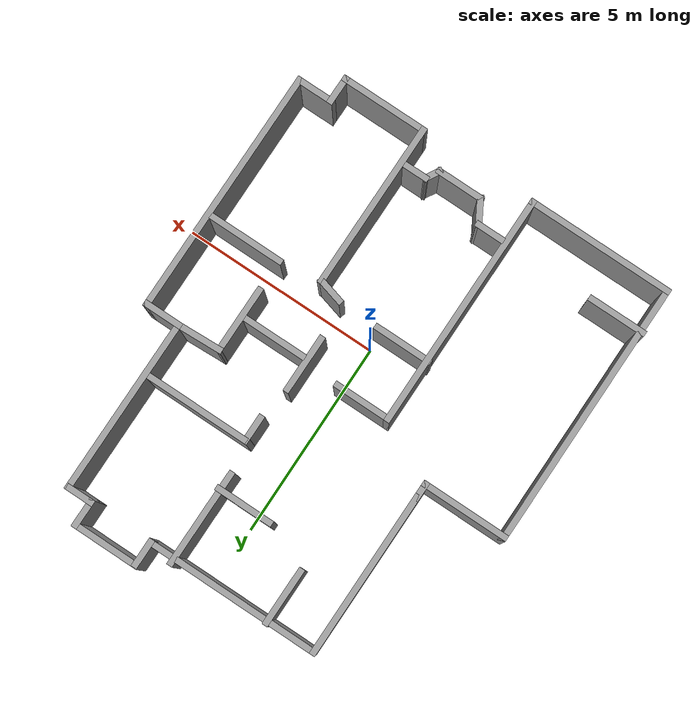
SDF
<?xml version='1.0'?>
<sdf version='1.6'>
  <model name='map_37'>
    <pose frame=''>-0.174646 1.22 0 0 -0 0</pose>
    <link name='Wall_0'>
      <collision name='Wall_0_Collision'>
        <geometry>
          <box>
            <size>3.75 0.15 2.5</size>
          </box>
        </geometry>
        <pose frame=''>0 0 1.25 0 -0 0</pose>
      </collision>
      <visual name='Wall_0_Visual'>
        <pose frame=''>0 0 1.25 0 -0 0</pose>
        <geometry>
          <box>
            <size>3.75 0.15 2.5</size>
          </box>
        </geometry>
        <material>
          <script>
            <uri>file://media/materials/scripts/gazebo.material</uri>
            <name>Gazebo/Grey</name>
          </script>
          <ambient>1 1 1 1</ambient>
        </material>
        <meta>
          <layer>0</layer>
        </meta>
      </visual>
      <pose frame=''>-2.92556 -5.825 0 0 -0 3.14159</pose>
    </link>
    <link name='Wall_1'>
      <collision name='Wall_1_Collision'>
        <geometry>
          <box>
            <size>6.75 0.15 2.5</size>
          </box>
        </geometry>
        <pose frame=''>0 0 1.25 0 -0 0</pose>
      </collision>
      <visual name='Wall_1_Visual'>
        <pose frame=''>0 0 1.25 0 -0 0</pose>
        <geometry>
          <box>
            <size>6.75 0.15 2.5</size>
          </box>
        </geometry>
        <material>
          <script>
            <uri>file://media/materials/scripts/gazebo.material</uri>
            <name>Gazebo/Grey</name>
          </script>
          <ambient>1 1 1 1</ambient>
        </material>
        <meta>
          <layer>0</layer>
        </meta>
      </visual>
      <pose frame=''>-4.72556 -2.525 0 0 -0 1.5708</pose>
    </link>
    <link name='Wall_10'>
      <collision name='Wall_10_Collision'>
        <geometry>
          <box>
            <size>1.75 0.15 2.5</size>
          </box>
        </geometry>
        <pose frame=''>0 0 1.25 0 -0 0</pose>
      </collision>
      <visual name='Wall_10_Visual'>
        <pose frame=''>0 0 1.25 0 -0 0</pose>
        <geometry>
          <box>
            <size>1.75 0.15 2.5</size>
          </box>
        </geometry>
        <material>
          <script>
            <uri>file://media/materials/scripts/gazebo.material</uri>
            <name>Gazebo/Grey</name>
          </script>
          <ambient>1 1 1 1</ambient>
        </material>
        <meta>
          <layer>0</layer>
        </meta>
      </visual>
      <pose frame=''>2.52444 5.825 0 0 -0 0</pose>
    </link>
    <link name='Wall_11'>
      <collision name='Wall_11_Collision'>
        <geometry>
          <box>
            <size>0.75 0.15 2.5</size>
          </box>
        </geometry>
        <pose frame=''>0 0 1.25 0 -0 0</pose>
      </collision>
      <visual name='Wall_11_Visual'>
        <pose frame=''>0 0 1.25 0 -0 0</pose>
        <geometry>
          <box>
            <size>0.75 0.15 2.5</size>
          </box>
        </geometry>
        <material>
          <script>
            <uri>file://media/materials/scripts/gazebo.material</uri>
            <name>Gazebo/Grey</name>
          </script>
          <ambient>1 1 1 1</ambient>
        </material>
        <meta>
          <layer>0</layer>
        </meta>
      </visual>
      <pose frame=''>3.32444 5.525 0 0 -0 -1.5708</pose>
    </link>
    <link name='Wall_12'>
      <collision name='Wall_12_Collision'>
        <geometry>
          <box>
            <size>0.75 0.15 2.5</size>
          </box>
        </geometry>
        <pose frame=''>0 0 1.25 0 -0 0</pose>
      </collision>
      <visual name='Wall_12_Visual'>
        <pose frame=''>0 0 1.25 0 -0 0</pose>
        <geometry>
          <box>
            <size>0.75 0.15 2.5</size>
          </box>
        </geometry>
        <material>
          <script>
            <uri>file://media/materials/scripts/gazebo.material</uri>
            <name>Gazebo/Grey</name>
          </script>
          <ambient>1 1 1 1</ambient>
        </material>
        <meta>
          <layer>0</layer>
        </meta>
      </visual>
      <pose frame=''>3.62444 5.225 0 0 -0 0</pose>
    </link>
    <link name='Wall_13'>
      <collision name='Wall_13_Collision'>
        <geometry>
          <box>
            <size>4.5 0.15 2.5</size>
          </box>
        </geometry>
        <pose frame=''>0 0 1.25 0 -0 0</pose>
      </collision>
      <visual name='Wall_13_Visual'>
        <pose frame=''>0 0 1.25 0 -0 0</pose>
        <geometry>
          <box>
            <size>4.5 0.15 2.5</size>
          </box>
        </geometry>
        <material>
          <script>
            <uri>file://media/materials/scripts/gazebo.material</uri>
            <name>Gazebo/Grey</name>
          </script>
          <ambient>1 1 1 1</ambient>
        </material>
        <meta>
          <layer>0</layer>
        </meta>
      </visual>
      <pose frame=''>3.92444 3.05 0 0 -0 -1.5708</pose>
    </link>
    <link name='Wall_14'>
      <collision name='Wall_14_Collision'>
        <geometry>
          <box>
            <size>1 0.15 2.5</size>
          </box>
        </geometry>
        <pose frame=''>0 0 1.25 0 -0 0</pose>
      </collision>
      <visual name='Wall_14_Visual'>
        <pose frame=''>0 0 1.25 0 -0 0</pose>
        <geometry>
          <box>
            <size>1 0.15 2.5</size>
          </box>
        </geometry>
        <material>
          <script>
            <uri>file://media/materials/scripts/gazebo.material</uri>
            <name>Gazebo/Grey</name>
          </script>
          <ambient>1 1 1 1</ambient>
        </material>
        <meta>
          <layer>0</layer>
        </meta>
      </visual>
      <pose frame=''>4.34944 0.875 0 0 -0 0</pose>
    </link>
    <link name='Wall_15'>
      <collision name='Wall_15_Collision'>
        <geometry>
          <box>
            <size>6.25 0.15 2.5</size>
          </box>
        </geometry>
        <pose frame=''>0 0 1.25 0 -0 0</pose>
      </collision>
      <visual name='Wall_15_Visual'>
        <pose frame=''>0 0 1.25 0 -0 0</pose>
        <geometry>
          <box>
            <size>6.25 0.15 2.5</size>
          </box>
        </geometry>
        <material>
          <script>
            <uri>file://media/materials/scripts/gazebo.material</uri>
            <name>Gazebo/Grey</name>
          </script>
          <ambient>1 1 1 1</ambient>
        </material>
        <meta>
          <layer>0</layer>
        </meta>
      </visual>
      <pose frame=''>4.77444 -2.175 0 0 -0 -1.5708</pose>
    </link>
    <link name='Wall_16'>
      <collision name='Wall_16_Collision'>
        <geometry>
          <box>
            <size>1 0.15 2.5</size>
          </box>
        </geometry>
        <pose frame=''>0 0 1.25 0 -0 0</pose>
      </collision>
      <visual name='Wall_16_Visual'>
        <pose frame=''>0 0 1.25 0 -0 0</pose>
        <geometry>
          <box>
            <size>1 0.15 2.5</size>
          </box>
        </geometry>
        <material>
          <script>
            <uri>file://media/materials/scripts/gazebo.material</uri>
            <name>Gazebo/Grey</name>
          </script>
          <ambient>1 1 1 1</ambient>
        </material>
        <meta>
          <layer>0</layer>
        </meta>
      </visual>
      <pose frame=''>4.34944 -5.225 0 0 -0 3.14159</pose>
    </link>
    <link name='Wall_17'>
      <collision name='Wall_17_Collision'>
        <geometry>
          <box>
            <size>0.75 0.15 2.5</size>
          </box>
        </geometry>
        <pose frame=''>0 0 1.25 0 -0 0</pose>
      </collision>
      <visual name='Wall_17_Visual'>
        <pose frame=''>0 0 1.25 0 -0 0</pose>
        <geometry>
          <box>
            <size>0.75 0.15 2.5</size>
          </box>
        </geometry>
        <material>
          <script>
            <uri>file://media/materials/scripts/gazebo.material</uri>
            <name>Gazebo/Grey</name>
          </script>
          <ambient>1 1 1 1</ambient>
        </material>
        <meta>
          <layer>0</layer>
        </meta>
      </visual>
      <pose frame=''>3.92444 -5.525 0 0 -0 -1.5708</pose>
    </link>
    <link name='Wall_18'>
      <collision name='Wall_18_Collision'>
        <geometry>
          <box>
            <size>2.25 0.15 2.5</size>
          </box>
        </geometry>
        <pose frame=''>0 0 1.25 0 -0 0</pose>
      </collision>
      <visual name='Wall_18_Visual'>
        <pose frame=''>0 0 1.25 0 -0 0</pose>
        <geometry>
          <box>
            <size>2.25 0.15 2.5</size>
          </box>
        </geometry>
        <material>
          <script>
            <uri>file://media/materials/scripts/gazebo.material</uri>
            <name>Gazebo/Grey</name>
          </script>
          <ambient>1 1 1 1</ambient>
        </material>
        <meta>
          <layer>0</layer>
        </meta>
      </visual>
      <pose frame=''>2.87444 -5.825 0 0 -0 3.14159</pose>
    </link>
    <link name='Wall_19'>
      <collision name='Wall_19_Collision'>
        <geometry>
          <box>
            <size>4.25 0.15 2.5</size>
          </box>
        </geometry>
        <pose frame=''>0 0 1.25 0 -0 0</pose>
      </collision>
      <visual name='Wall_19_Visual'>
        <pose frame=''>0 0 1.25 0 -0 0</pose>
        <geometry>
          <box>
            <size>4.25 0.15 2.5</size>
          </box>
        </geometry>
        <material>
          <script>
            <uri>file://media/materials/scripts/gazebo.material</uri>
            <name>Gazebo/Grey</name>
          </script>
          <ambient>1 1 1 1</ambient>
        </material>
        <meta>
          <layer>0</layer>
        </meta>
      </visual>
      <pose frame=''>1.82444 -3.775 0 0 -0 1.5708</pose>
    </link>
    <link name='Wall_2'>
      <collision name='Wall_2_Collision'>
        <geometry>
          <box>
            <size>2.25 0.15 2.5</size>
          </box>
        </geometry>
        <pose frame=''>0 0 1.25 0 -0 0</pose>
      </collision>
      <visual name='Wall_2_Visual'>
        <pose frame=''>0 0 1.25 0 -0 0</pose>
        <geometry>
          <box>
            <size>2.25 0.15 2.5</size>
          </box>
        </geometry>
        <material>
          <script>
            <uri>file://media/materials/scripts/gazebo.material</uri>
            <name>Gazebo/Grey</name>
          </script>
          <ambient>1 1 1 1</ambient>
        </material>
        <meta>
          <layer>0</layer>
        </meta>
      </visual>
      <pose frame=''>-3.67556 0.775 0 0 -0 0</pose>
    </link>
    <link name='Wall_20'>
      <collision name='Wall_20_Collision'>
        <geometry>
          <box>
            <size>0.75 0.15 2.5</size>
          </box>
        </geometry>
        <pose frame=''>0 0 1.25 0 -0 0</pose>
      </collision>
      <visual name='Wall_20_Visual'>
        <pose frame=''>0 0 1.25 0 -0 0</pose>
        <geometry>
          <box>
            <size>0.75 0.15 2.5</size>
          </box>
        </geometry>
        <material>
          <script>
            <uri>file://media/materials/scripts/gazebo.material</uri>
            <name>Gazebo/Grey</name>
          </script>
          <ambient>1 1 1 1</ambient>
        </material>
        <meta>
          <layer>0</layer>
        </meta>
      </visual>
      <pose frame=''>1.53466 -1.64735 0 0 -0 2.87979</pose>
    </link>
    <link name='Wall_22'>
      <collision name='Wall_22_Collision'>
        <geometry>
          <box>
            <size>6 0.15 2.5</size>
          </box>
        </geometry>
        <pose frame=''>0 0 1.25 0 -0 0</pose>
      </collision>
      <visual name='Wall_22_Visual'>
        <pose frame=''>0 0 1.25 0 -0 0</pose>
        <geometry>
          <box>
            <size>6 0.15 2.5</size>
          </box>
        </geometry>
        <material>
          <script>
            <uri>file://media/materials/scripts/gazebo.material</uri>
            <name>Gazebo/Grey</name>
          </script>
          <ambient>1 1 1 1</ambient>
        </material>
        <meta>
          <layer>0</layer>
        </meta>
      </visual>
      <pose frame=''>-1.12556 -2.9 0 0 -0 1.5708</pose>
    </link>
    <link name='Wall_23'>
      <collision name='Wall_23_Collision'>
        <geometry>
          <box>
            <size>1.5 0.15 2.5</size>
          </box>
        </geometry>
        <pose frame=''>0 0 1.25 0 -0 0</pose>
      </collision>
      <visual name='Wall_23_Visual'>
        <pose frame=''>0 0 1.25 0 -0 0</pose>
        <geometry>
          <box>
            <size>1.5 0.15 2.5</size>
          </box>
        </geometry>
        <material>
          <script>
            <uri>file://media/materials/scripts/gazebo.material</uri>
            <name>Gazebo/Grey</name>
          </script>
          <ambient>1 1 1 1</ambient>
        </material>
        <meta>
          <layer>0</layer>
        </meta>
      </visual>
      <pose frame=''>-0.450563 0.025 0 0 -0 0</pose>
    </link>
    <link name='Wall_25'>
      <collision name='Wall_25_Collision'>
        <geometry>
          <box>
            <size>1.5 0.15 2.5</size>
          </box>
        </geometry>
        <pose frame=''>0 0 1.25 0 -0 0</pose>
      </collision>
      <visual name='Wall_25_Visual'>
        <pose frame=''>0 0 1.25 0 -0 0</pose>
        <geometry>
          <box>
            <size>1.5 0.15 2.5</size>
          </box>
        </geometry>
        <material>
          <script>
            <uri>file://media/materials/scripts/gazebo.material</uri>
            <name>Gazebo/Grey</name>
          </script>
          <ambient>1 1 1 1</ambient>
        </material>
        <meta>
          <layer>0</layer>
        </meta>
      </visual>
      <pose frame=''>-0.474843 -1.54705 0 0 -0 0</pose>
    </link>
    <link name='Wall_27'>
      <collision name='Wall_27_Collision'>
        <geometry>
          <box>
            <size>0.75 0.15 2.5</size>
          </box>
        </geometry>
        <pose frame=''>0 0 1.25 0 -0 0</pose>
      </collision>
      <visual name='Wall_27_Visual'>
        <pose frame=''>0 0 1.25 0 -0 0</pose>
        <geometry>
          <box>
            <size>0.75 0.15 2.5</size>
          </box>
        </geometry>
        <material>
          <script>
            <uri>file://media/materials/scripts/gazebo.material</uri>
            <name>Gazebo/Grey</name>
          </script>
          <ambient>1 1 1 1</ambient>
        </material>
        <meta>
          <layer>0</layer>
        </meta>
      </visual>
      <pose frame=''>-0.696892 -4.72843 0 0 -0 0</pose>
    </link>
    <link name='Wall_28'>
      <collision name='Wall_28_Collision'>
        <geometry>
          <box>
            <size>0.75 0.15 2.5</size>
          </box>
        </geometry>
        <pose frame=''>0 0 1.25 0 -0 0</pose>
      </collision>
      <visual name='Wall_28_Visual'>
        <pose frame=''>0 0 1.25 0 -0 0</pose>
        <geometry>
          <box>
            <size>0.75 0.15 2.5</size>
          </box>
        </geometry>
        <material>
          <script>
            <uri>file://media/materials/scripts/gazebo.material</uri>
            <name>Gazebo/Grey</name>
          </script>
          <ambient>1 1 1 1</ambient>
        </material>
        <meta>
          <layer>0</layer>
        </meta>
      </visual>
      <pose frame=''>-0.246892 -4.98824 0 0 -0 -1.0472</pose>
    </link>
    <link name='Wall_29'>
      <collision name='Wall_29_Collision'>
        <geometry>
          <box>
            <size>1.25 0.15 2.5</size>
          </box>
        </geometry>
        <pose frame=''>0 0 1.25 0 -0 0</pose>
      </collision>
      <visual name='Wall_29_Visual'>
        <pose frame=''>0 0 1.25 0 -0 0</pose>
        <geometry>
          <box>
            <size>1.25 0.15 2.5</size>
          </box>
        </geometry>
        <material>
          <script>
            <uri>file://media/materials/scripts/gazebo.material</uri>
            <name>Gazebo/Grey</name>
          </script>
          <ambient>1 1 1 1</ambient>
        </material>
        <meta>
          <layer>0</layer>
        </meta>
      </visual>
      <pose frame=''>0.453108 -5.24805 0 0 -0 0</pose>
    </link>
    <link name='Wall_3'>
      <collision name='Wall_3_Collision'>
        <geometry>
          <box>
            <size>0.5 0.15 2.5</size>
          </box>
        </geometry>
        <pose frame=''>0 0 1.25 0 -0 0</pose>
      </collision>
      <visual name='Wall_3_Visual'>
        <pose frame=''>0 0 1.25 0 -0 0</pose>
        <geometry>
          <box>
            <size>0.5 0.15 2.5</size>
          </box>
        </geometry>
        <material>
          <script>
            <uri>file://media/materials/scripts/gazebo.material</uri>
            <name>Gazebo/Grey</name>
          </script>
          <ambient>1 1 1 1</ambient>
        </material>
        <meta>
          <layer>0</layer>
        </meta>
      </visual>
      <pose frame=''>-2.62556 0.95 0 0 -0 1.5708</pose>
    </link>
    <link name='Wall_30'>
      <collision name='Wall_30_Collision'>
        <geometry>
          <box>
            <size>0.5 0.15 2.5</size>
          </box>
        </geometry>
        <pose frame=''>0 0 1.25 0 -0 0</pose>
      </collision>
      <visual name='Wall_30_Visual'>
        <pose frame=''>0 0 1.25 0 -0 0</pose>
        <geometry>
          <box>
            <size>0.5 0.15 2.5</size>
          </box>
        </geometry>
        <material>
          <script>
            <uri>file://media/materials/scripts/gazebo.material</uri>
            <name>Gazebo/Grey</name>
          </script>
          <ambient>1 1 1 1</ambient>
        </material>
        <meta>
          <layer>0</layer>
        </meta>
      </visual>
      <pose frame=''>1.09061 -5.09649 0 0 -0 1.0472</pose>
    </link>
    <link name='Wall_31'>
      <collision name='Wall_31_Collision'>
        <geometry>
          <box>
            <size>0.75 0.15 2.5</size>
          </box>
        </geometry>
        <pose frame=''>0 0 1.25 0 -0 0</pose>
      </collision>
      <visual name='Wall_31_Visual'>
        <pose frame=''>0 0 1.25 0 -0 0</pose>
        <geometry>
          <box>
            <size>0.75 0.15 2.5</size>
          </box>
        </geometry>
        <material>
          <script>
            <uri>file://media/materials/scripts/gazebo.material</uri>
            <name>Gazebo/Grey</name>
          </script>
          <ambient>1 1 1 1</ambient>
        </material>
        <meta>
          <layer>0</layer>
        </meta>
      </visual>
      <pose frame=''>1.47811 -4.94494 0 0 -0 0</pose>
    </link>
    <link name='Wall_33'>
      <collision name='Wall_33_Collision'>
        <geometry>
          <box>
            <size>1.5 0.15 2.5</size>
          </box>
        </geometry>
        <pose frame=''>0 0 1.25 0 -0 0</pose>
      </collision>
      <visual name='Wall_33_Visual'>
        <pose frame=''>0 0 1.25 0 -0 0</pose>
        <geometry>
          <box>
            <size>1.5 0.15 2.5</size>
          </box>
        </geometry>
        <material>
          <script>
            <uri>file://media/materials/scripts/gazebo.material</uri>
            <name>Gazebo/Grey</name>
          </script>
          <ambient>1 1 1 1</ambient>
        </material>
        <meta>
          <layer>0</layer>
        </meta>
      </visual>
      <pose frame=''>-4.09944 -4.73442 0 0 -0 0</pose>
    </link>
    <link name='Wall_35'>
      <collision name='Wall_35_Collision'>
        <geometry>
          <box>
            <size>1.5 0.15 2.5</size>
          </box>
        </geometry>
        <pose frame=''>0 0 1.25 0 -0 0</pose>
      </collision>
      <visual name='Wall_35_Visual'>
        <pose frame=''>0 0 1.25 0 -0 0</pose>
        <geometry>
          <box>
            <size>1.5 0.15 2.5</size>
          </box>
        </geometry>
        <material>
          <script>
            <uri>file://media/materials/scripts/gazebo.material</uri>
            <name>Gazebo/Grey</name>
          </script>
          <ambient>1 1 1 1</ambient>
        </material>
        <meta>
          <layer>0</layer>
        </meta>
      </visual>
      <pose frame=''>1.10421 0.043622 0 0 -0 -1.5708</pose>
    </link>
    <link name='Wall_37'>
      <collision name='Wall_37_Collision'>
        <geometry>
          <box>
            <size>1.75 0.15 2.5</size>
          </box>
        </geometry>
        <pose frame=''>0 0 1.25 0 -0 0</pose>
      </collision>
      <visual name='Wall_37_Visual'>
        <pose frame=''>0 0 1.25 0 -0 0</pose>
        <geometry>
          <box>
            <size>1.75 0.15 2.5</size>
          </box>
        </geometry>
        <material>
          <script>
            <uri>file://media/materials/scripts/gazebo.material</uri>
            <name>Gazebo/Grey</name>
          </script>
          <ambient>1 1 1 1</ambient>
        </material>
        <meta>
          <layer>0</layer>
        </meta>
      </visual>
      <pose frame=''>1.95741 -0.079384 0 0 -0 0</pose>
    </link>
    <link name='Wall_39'>
      <collision name='Wall_39_Collision'>
        <geometry>
          <box>
            <size>1.75 0.15 2.5</size>
          </box>
        </geometry>
        <pose frame=''>0 0 1.25 0 -0 0</pose>
      </collision>
      <visual name='Wall_39_Visual'>
        <pose frame=''>0 0 1.25 0 -0 0</pose>
        <geometry>
          <box>
            <size>1.75 0.15 2.5</size>
          </box>
        </geometry>
        <material>
          <script>
            <uri>file://media/materials/scripts/gazebo.material</uri>
            <name>Gazebo/Grey</name>
          </script>
          <ambient>1 1 1 1</ambient>
        </material>
        <meta>
          <layer>0</layer>
        </meta>
      </visual>
      <pose frame=''>2.85982 0.029011 0 0 -0 1.5708</pose>
    </link>
    <link name='Wall_40'>
      <collision name='Wall_40_Collision'>
        <geometry>
          <box>
            <size>1.21561 0.15 2.5</size>
          </box>
        </geometry>
        <pose frame=''>0 0 1.25 0 -0 0</pose>
      </collision>
      <visual name='Wall_40_Visual'>
        <pose frame=''>0 0 1.25 0 -0 0</pose>
        <geometry>
          <box>
            <size>1.21561 0.15 2.5</size>
          </box>
        </geometry>
        <material>
          <script>
            <uri>file://media/materials/scripts/gazebo.material</uri>
            <name>Gazebo/Grey</name>
          </script>
          <ambient>1 1 1 1</ambient>
        </material>
        <meta>
          <layer>0</layer>
        </meta>
      </visual>
      <pose frame=''>3.39213 0.852005 0 0 -0 0.043171</pose>
    </link>
    <link name='Wall_42'>
      <collision name='Wall_42_Collision'>
        <geometry>
          <box>
            <size>2 0.15 2.5</size>
          </box>
        </geometry>
        <pose frame=''>0 0 1.25 0 -0 0</pose>
      </collision>
      <visual name='Wall_42_Visual'>
        <pose frame=''>0 0 1.25 0 -0 0</pose>
        <geometry>
          <box>
            <size>2 0.15 2.5</size>
          </box>
        </geometry>
        <material>
          <script>
            <uri>file://media/materials/scripts/gazebo.material</uri>
            <name>Gazebo/Grey</name>
          </script>
          <ambient>1 1 1 1</ambient>
        </material>
        <meta>
          <layer>0</layer>
        </meta>
      </visual>
      <pose frame=''>3.78482 -1.56899 0 0 -0 0</pose>
    </link>
    <link name='Wall_45'>
      <collision name='Wall_45_Collision'>
        <geometry>
          <box>
            <size>2.5 0.15 2.5</size>
          </box>
        </geometry>
        <pose frame=''>0 0 1.25 0 -0 0</pose>
      </collision>
      <visual name='Wall_45_Visual'>
        <pose frame=''>0 0 1.25 0 -0 0</pose>
        <geometry>
          <box>
            <size>2.5 0.15 2.5</size>
          </box>
        </geometry>
        <material>
          <script>
            <uri>file://media/materials/scripts/gazebo.material</uri>
            <name>Gazebo/Grey</name>
          </script>
          <ambient>1 1 1 1</ambient>
        </material>
        <meta>
          <layer>0</layer>
        </meta>
      </visual>
      <pose frame=''>1.08982 4.16722 0 0 -0 -1.5708</pose>
    </link>
    <link name='Wall_47'>
      <collision name='Wall_47_Collision'>
        <geometry>
          <box>
            <size>1.5 0.15 2.5</size>
          </box>
        </geometry>
        <pose frame=''>0 0 1.25 0 -0 0</pose>
      </collision>
      <visual name='Wall_47_Visual'>
        <pose frame=''>0 0 1.25 0 -0 0</pose>
        <geometry>
          <box>
            <size>1.5 0.15 2.5</size>
          </box>
        </geometry>
        <material>
          <script>
            <uri>file://media/materials/scripts/gazebo.material</uri>
            <name>Gazebo/Grey</name>
          </script>
          <ambient>1 1 1 1</ambient>
        </material>
        <meta>
          <layer>0</layer>
        </meta>
      </visual>
      <pose frame=''>0.455275 3.40035 0 0 -0 3.14159</pose>
    </link>
    <link name='Wall_49'>
      <collision name='Wall_49_Collision'>
        <geometry>
          <box>
            <size>2.75 0.15 2.5</size>
          </box>
        </geometry>
        <pose frame=''>0 0 1.25 0 -0 0</pose>
      </collision>
      <visual name='Wall_49_Visual'>
        <pose frame=''>0 0 1.25 0 -0 0</pose>
        <geometry>
          <box>
            <size>2.75 0.15 2.5</size>
          </box>
        </geometry>
        <material>
          <script>
            <uri>file://media/materials/scripts/gazebo.material</uri>
            <name>Gazebo/Grey</name>
          </script>
          <ambient>1 1 1 1</ambient>
        </material>
        <meta>
          <layer>0</layer>
        </meta>
      </visual>
      <pose frame=''>2.5408 2.18668 0 0 -0 3.14159</pose>
    </link>
    <link name='Wall_52'>
      <collision name='Wall_52_Collision'>
        <geometry>
          <box>
            <size>0.75 0.15 2.5</size>
          </box>
        </geometry>
        <pose frame=''>0 0 1.25 0 -0 0</pose>
      </collision>
      <visual name='Wall_52_Visual'>
        <pose frame=''>0 0 1.25 0 -0 0</pose>
        <geometry>
          <box>
            <size>0.75 0.15 2.5</size>
          </box>
        </geometry>
        <material>
          <script>
            <uri>file://media/materials/scripts/gazebo.material</uri>
            <name>Gazebo/Grey</name>
          </script>
          <ambient>1 1 1 1</ambient>
        </material>
        <meta>
          <layer>0</layer>
        </meta>
      </visual>
      <pose frame=''>1.2408 1.88668 0 0 -0 -1.5708</pose>
    </link>
    <link name='Wall_54'>
      <collision name='Wall_54_Collision'>
        <geometry>
          <box>
            <size>1.5 0.15 2.5</size>
          </box>
        </geometry>
        <pose frame=''>0 0 1.25 0 -0 0</pose>
      </collision>
      <visual name='Wall_54_Visual'>
        <pose frame=''>0 0 1.25 0 -0 0</pose>
        <geometry>
          <box>
            <size>1.5 0.15 2.5</size>
          </box>
        </geometry>
        <material>
          <script>
            <uri>file://media/materials/scripts/gazebo.material</uri>
            <name>Gazebo/Grey</name>
          </script>
          <ambient>1 1 1 1</ambient>
        </material>
        <meta>
          <layer>0</layer>
        </meta>
      </visual>
      <pose frame=''>-1.39478 4.58887 0 0 -0 -1.5708</pose>
    </link>
    <link name='Wall_6'>
      <collision name='Wall_6_Collision'>
        <geometry>
          <box>
            <size>4.25 0.15 2.5</size>
          </box>
        </geometry>
        <pose frame=''>0 0 1.25 0 -0 0</pose>
      </collision>
      <visual name='Wall_6_Visual'>
        <pose frame=''>0 0 1.25 0 -0 0</pose>
        <geometry>
          <box>
            <size>4.25 0.15 2.5</size>
          </box>
        </geometry>
        <material>
          <script>
            <uri>file://media/materials/scripts/gazebo.material</uri>
            <name>Gazebo/Grey</name>
          </script>
          <ambient>1 1 1 1</ambient>
        </material>
        <meta>
          <layer>0</layer>
        </meta>
      </visual>
      <pose frame=''>-2.62556 3.175 0 0 -0 1.5708</pose>
    </link>
    <link name='Wall_7'>
      <collision name='Wall_7_Collision'>
        <geometry>
          <box>
            <size>4.5 0.15 2.5</size>
          </box>
        </geometry>
        <pose frame=''>0 0 1.25 0 -0 0</pose>
      </collision>
      <visual name='Wall_7_Visual'>
        <pose frame=''>0 0 1.25 0 -0 0</pose>
        <geometry>
          <box>
            <size>4.5 0.15 2.5</size>
          </box>
        </geometry>
        <material>
          <script>
            <uri>file://media/materials/scripts/gazebo.material</uri>
            <name>Gazebo/Grey</name>
          </script>
          <ambient>1 1 1 1</ambient>
        </material>
        <meta>
          <layer>0</layer>
        </meta>
      </visual>
      <pose frame=''>-0.450563 5.225 0 0 -0 0</pose>
    </link>
    <link name='Wall_9'>
      <collision name='Wall_9_Collision'>
        <geometry>
          <box>
            <size>0.75 0.15 2.5</size>
          </box>
        </geometry>
        <pose frame=''>0 0 1.25 0 -0 0</pose>
      </collision>
      <visual name='Wall_9_Visual'>
        <pose frame=''>0 0 1.25 0 -0 0</pose>
        <geometry>
          <box>
            <size>0.75 0.15 2.5</size>
          </box>
        </geometry>
        <material>
          <script>
            <uri>file://media/materials/scripts/gazebo.material</uri>
            <name>Gazebo/Grey</name>
          </script>
          <ambient>1 1 1 1</ambient>
        </material>
        <meta>
          <layer>0</layer>
        </meta>
      </visual>
      <pose frame=''>1.72444 5.525 0 0 -0 1.5708</pose>
    </link>
    <static>1</static>
  </model>
</sdf>
